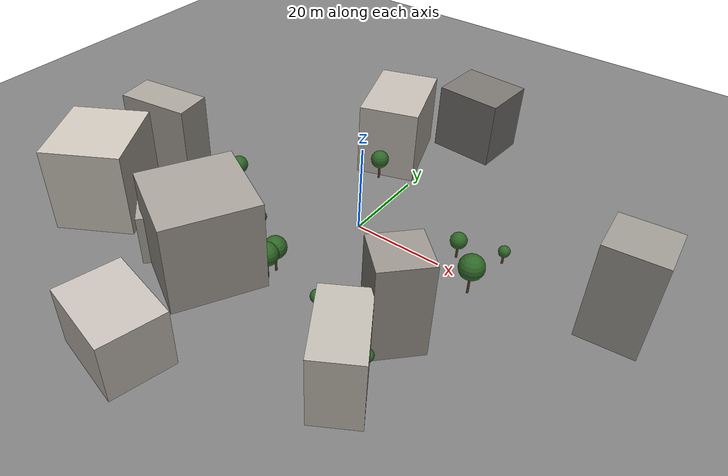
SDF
<sdf version="1.9">
 <world name="ecps295_lowbox_s38">
  <model name="ground_plane">
   <static>true</static>
   <link name="link">
    <collision name="collision">
     <geometry><plane><normal>0 0 1</normal><size>50 50</size></plane></geometry>
    </collision>
    <visual name="visual">
     <geometry><plane><normal>0 0 1</normal><size>50 50</size></plane></geometry>
     <material><ambient>0.5 0.5 0.5 1</ambient><diffuse>0.5 0.5 0.5 1</diffuse></material>
    </visual>
   </link>
  </model>
  <model name="scenery">
   <static>true</static>
   <link name="link">
    <visual name="bldg0">
     <pose>3.500 46.194 8.006 0 0 1.4952</pose>
     <geometry><box><size>13.179 15.247 16.012</size></box></geometry>
     <material><ambient>0.47 0.46 0.44 1</ambient><diffuse>0.47 0.46 0.44 1</diffuse></material>
    </visual>
    <visual name="bldg1">
     <pose>54.936 4.556 10.965 0 0 0.0827</pose>
     <geometry><box><size>11.631 10.812 21.930</size></box></geometry>
     <material><ambient>0.61 0.60 0.57 1</ambient><diffuse>0.61 0.60 0.57 1</diffuse></material>
    </visual>
    <visual name="bldg2">
     <pose>22.895 -37.914 8.079 0 0 5.2556</pose>
     <geometry><box><size>16.947 9.807 16.158</size></box></geometry>
     <material><ambient>0.75 0.73 0.69 1</ambient><diffuse>0.75 0.73 0.69 1</diffuse></material>
    </visual>
    <visual name="bldg3">
     <pose>-51.684 -7.582 9.066 0 0 3.2872</pose>
     <geometry><box><size>17.400 8.768 18.132</size></box></geometry>
     <material><ambient>0.66 0.64 0.60 1</ambient><diffuse>0.66 0.64 0.60 1</diffuse></material>
    </visual>
    <visual name="bldg4">
     <pose>-9.792 29.339 8.751 0 0 1.8929</pose>
     <geometry><box><size>20.117 13.673 17.501</size></box></geometry>
     <material><ambient>0.76 0.73 0.70 1</ambient><diffuse>0.76 0.73 0.70 1</diffuse></material>
    </visual>
    <visual name="bldg5">
     <pose>-12.880 -56.175 6.557 0 0 4.4870</pose>
     <geometry><box><size>13.529 17.611 13.114</size></box></geometry>
     <material><ambient>0.78 0.75 0.72 1</ambient><diffuse>0.78 0.75 0.72 1</diffuse></material>
    </visual>
    <visual name="bldg6">
     <pose>23.839 -22.708 10.724 0 0 5.5221</pose>
     <geometry><box><size>9.904 10.604 21.448</size></box></geometry>
     <material><ambient>0.60 0.58 0.55 1</ambient><diffuse>0.60 0.58 0.55 1</diffuse></material>
    </visual>
    <visual name="bldg7">
     <pose>-27.312 -27.883 5.807 0 0 3.9373</pose>
     <geometry><box><size>15.101 12.630 11.615</size></box></geometry>
     <material><ambient>0.65 0.64 0.60 1</ambient><diffuse>0.65 0.64 0.60 1</diffuse></material>
    </visual>
    <visual name="bldg8">
     <pose>-49.307 -28.848 9.851 0 0 3.6710</pose>
     <geometry><box><size>17.548 19.147 19.702</size></box></geometry>
     <material><ambient>0.80 0.77 0.73 1</ambient><diffuse>0.80 0.77 0.73 1</diffuse></material>
    </visual>
    <visual name="bldg9">
     <pose>-16.565 -30.710 10.238 0 0 4.2177</pose>
     <geometry><box><size>20.049 19.576 20.475</size></box></geometry>
     <material><ambient>0.65 0.63 0.60 1</ambient><diffuse>0.65 0.63 0.60 1</diffuse></material>
    </visual>
    <visual name="trunk0">
     <pose>-5.10 -22.06 2.45 0 0 0</pose>
     <geometry><cylinder><radius>0.25</radius><length>4.89</length></cylinder></geometry>
     <material><ambient>0.35 0.25 0.15 1</ambient><diffuse>0.35 0.25 0.15 1</diffuse></material>
    </visual>
    <visual name="crown0">
     <pose>-5.10 -22.06 6.12 0 0 0</pose>
     <geometry><sphere><radius>2.45</radius></sphere></geometry>
     <material><ambient>0.18 0.4 0.15 1</ambient><diffuse>0.18 0.4 0.15 1</diffuse></material>
    </visual>
    <visual name="trunk1">
     <pose>-21.72 -10.82 1.30 0 0 0</pose>
     <geometry><cylinder><radius>0.25</radius><length>2.59</length></cylinder></geometry>
     <material><ambient>0.35 0.25 0.15 1</ambient><diffuse>0.35 0.25 0.15 1</diffuse></material>
    </visual>
    <visual name="crown1">
     <pose>-21.72 -10.82 3.24 0 0 0</pose>
     <geometry><sphere><radius>1.30</radius></sphere></geometry>
     <material><ambient>0.18 0.4 0.15 1</ambient><diffuse>0.18 0.4 0.15 1</diffuse></material>
    </visual>
    <visual name="trunk2">
     <pose>24.17 -31.59 1.33 0 0 0</pose>
     <geometry><cylinder><radius>0.25</radius><length>2.67</length></cylinder></geometry>
     <material><ambient>0.35 0.25 0.15 1</ambient><diffuse>0.35 0.25 0.15 1</diffuse></material>
    </visual>
    <visual name="crown2">
     <pose>24.17 -31.59 3.33 0 0 0</pose>
     <geometry><sphere><radius>1.33</radius></sphere></geometry>
     <material><ambient>0.18 0.4 0.15 1</ambient><diffuse>0.18 0.4 0.15 1</diffuse></material>
    </visual>
    <visual name="trunk3">
     <pose>8.45 -25.68 1.43 0 0 0</pose>
     <geometry><cylinder><radius>0.25</radius><length>2.85</length></cylinder></geometry>
     <material><ambient>0.35 0.25 0.15 1</ambient><diffuse>0.35 0.25 0.15 1</diffuse></material>
    </visual>
    <visual name="crown3">
     <pose>8.45 -25.68 3.57 0 0 0</pose>
     <geometry><sphere><radius>1.43</radius></sphere></geometry>
     <material><ambient>0.18 0.4 0.15 1</ambient><diffuse>0.18 0.4 0.15 1</diffuse></material>
    </visual>
    <visual name="trunk4">
     <pose>-9.51 33.59 2.51 0 0 0</pose>
     <geometry><cylinder><radius>0.25</radius><length>5.02</length></cylinder></geometry>
     <material><ambient>0.35 0.25 0.15 1</ambient><diffuse>0.35 0.25 0.15 1</diffuse></material>
    </visual>
    <visual name="crown4">
     <pose>-9.51 33.59 6.27 0 0 0</pose>
     <geometry><sphere><radius>2.51</radius></sphere></geometry>
     <material><ambient>0.18 0.4 0.15 1</ambient><diffuse>0.18 0.4 0.15 1</diffuse></material>
    </visual>
    <visual name="trunk5">
     <pose>30.31 8.64 1.27 0 0 0</pose>
     <geometry><cylinder><radius>0.25</radius><length>2.53</length></cylinder></geometry>
     <material><ambient>0.35 0.25 0.15 1</ambient><diffuse>0.35 0.25 0.15 1</diffuse></material>
    </visual>
    <visual name="crown5">
     <pose>30.31 8.64 3.17 0 0 0</pose>
     <geometry><sphere><radius>1.27</radius></sphere></geometry>
     <material><ambient>0.18 0.4 0.15 1</ambient><diffuse>0.18 0.4 0.15 1</diffuse></material>
    </visual>
    <visual name="trunk6">
     <pose>-4.98 -24.79 2.52 0 0 0</pose>
     <geometry><cylinder><radius>0.25</radius><length>5.04</length></cylinder></geometry>
     <material><ambient>0.35 0.25 0.15 1</ambient><diffuse>0.35 0.25 0.15 1</diffuse></material>
    </visual>
    <visual name="crown6">
     <pose>-4.98 -24.79 6.30 0 0 0</pose>
     <geometry><sphere><radius>2.52</radius></sphere></geometry>
     <material><ambient>0.18 0.4 0.15 1</ambient><diffuse>0.18 0.4 0.15 1</diffuse></material>
    </visual>
    <visual name="trunk7">
     <pose>28.90 -3.53 2.70 0 0 0</pose>
     <geometry><cylinder><radius>0.25</radius><length>5.40</length></cylinder></geometry>
     <material><ambient>0.35 0.25 0.15 1</ambient><diffuse>0.35 0.25 0.15 1</diffuse></material>
    </visual>
    <visual name="crown7">
     <pose>28.90 -3.53 6.74 0 0 0</pose>
     <geometry><sphere><radius>2.70</radius></sphere></geometry>
     <material><ambient>0.18 0.4 0.15 1</ambient><diffuse>0.18 0.4 0.15 1</diffuse></material>
    </visual>
    <visual name="trunk8">
     <pose>-7.21 18.33 2.10 0 0 0</pose>
     <geometry><cylinder><radius>0.25</radius><length>4.20</length></cylinder></geometry>
     <material><ambient>0.35 0.25 0.15 1</ambient><diffuse>0.35 0.25 0.15 1</diffuse></material>
    </visual>
    <visual name="crown8">
     <pose>-7.21 18.33 5.25 0 0 0</pose>
     <geometry><sphere><radius>2.10</radius></sphere></geometry>
     <material><ambient>0.18 0.4 0.15 1</ambient><diffuse>0.18 0.4 0.15 1</diffuse></material>
    </visual>
    <visual name="trunk9">
     <pose>21.91 4.38 1.81 0 0 0</pose>
     <geometry><cylinder><radius>0.25</radius><length>3.62</length></cylinder></geometry>
     <material><ambient>0.35 0.25 0.15 1</ambient><diffuse>0.35 0.25 0.15 1</diffuse></material>
    </visual>
    <visual name="crown9">
     <pose>21.91 4.38 4.53 0 0 0</pose>
     <geometry><sphere><radius>1.81</radius></sphere></geometry>
     <material><ambient>0.18 0.4 0.15 1</ambient><diffuse>0.18 0.4 0.15 1</diffuse></material>
    </visual>
    <visual name="trunk10">
     <pose>-16.48 -13.71 1.26 0 0 0</pose>
     <geometry><cylinder><radius>0.25</radius><length>2.53</length></cylinder></geometry>
     <material><ambient>0.35 0.25 0.15 1</ambient><diffuse>0.35 0.25 0.15 1</diffuse></material>
    </visual>
    <visual name="crown10">
     <pose>-16.48 -13.71 3.16 0 0 0</pose>
     <geometry><sphere><radius>1.26</radius></sphere></geometry>
     <material><ambient>0.18 0.4 0.15 1</ambient><diffuse>0.18 0.4 0.15 1</diffuse></material>
    </visual>
    <visual name="trunk11">
     <pose>16.79 -18.39 2.64 0 0 0</pose>
     <geometry><cylinder><radius>0.25</radius><length>5.28</length></cylinder></geometry>
     <material><ambient>0.35 0.25 0.15 1</ambient><diffuse>0.35 0.25 0.15 1</diffuse></material>
    </visual>
    <visual name="crown11">
     <pose>16.79 -18.39 6.59 0 0 0</pose>
     <geometry><sphere><radius>2.64</radius></sphere></geometry>
     <material><ambient>0.18 0.4 0.15 1</ambient><diffuse>0.18 0.4 0.15 1</diffuse></material>
    </visual>
    <visual name="trunk12">
     <pose>20.96 -15.91 1.89 0 0 0</pose>
     <geometry><cylinder><radius>0.25</radius><length>3.78</length></cylinder></geometry>
     <material><ambient>0.35 0.25 0.15 1</ambient><diffuse>0.35 0.25 0.15 1</diffuse></material>
    </visual>
    <visual name="crown12">
     <pose>20.96 -15.91 4.73 0 0 0</pose>
     <geometry><sphere><radius>1.89</radius></sphere></geometry>
     <material><ambient>0.18 0.4 0.15 1</ambient><diffuse>0.18 0.4 0.15 1</diffuse></material>
    </visual>
    <visual name="trunk13">
     <pose>-31.91 -4.05 2.09 0 0 0</pose>
     <geometry><cylinder><radius>0.25</radius><length>4.19</length></cylinder></geometry>
     <material><ambient>0.35 0.25 0.15 1</ambient><diffuse>0.35 0.25 0.15 1</diffuse></material>
    </visual>
    <visual name="crown13">
     <pose>-31.91 -4.05 5.23 0 0 0</pose>
     <geometry><sphere><radius>2.09</radius></sphere></geometry>
     <material><ambient>0.18 0.4 0.15 1</ambient><diffuse>0.18 0.4 0.15 1</diffuse></material>
    </visual>
   </link>
  </model>
 </world>
</sdf>
